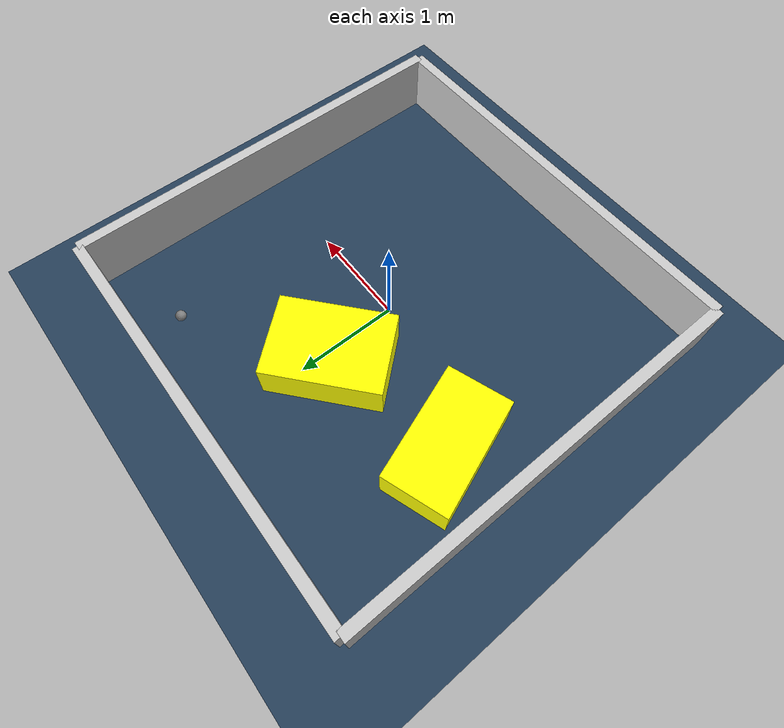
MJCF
<?xml version="1.0" ?>
<mujoco model="generated_environment">
  <option timestep="0.01" integrator="RK4" cone="elliptic"/>
  <default>
    <geom density="1"/>
  </default>
  <asset>
    <texture builtin="gradient" height="3072" rgb1="0.3 0.5 0.7" rgb2="0 0 0" type="skybox" width="512"/>
    <texture builtin="checker" height="300" mark="edge" markrgb="0.8 0.8 0.8" name="groundplane" rgb1="0.2 0.3 0.4" rgb2="0.1 0.2 0.3" type="2d" width="300"/>
    <material name="groundplane" reflectance="0.2" texrepeat="5 5" texture="groundplane" texuniform="true"/>
    <material name="robot" rgba="0.0 1.0 0.0 1"/>
  </asset>
  <worldbody>
    <light dir="0 0 -1" directional="true" pos="0 0 1.5"/>
    <geom condim="4" friction="1.0 0.005 0.001" material="groundplane" name="floor" size="0 0 0.05" type="plane"/>
    <body name="walls">
      <geom name="wall_1" condim="4" pos="-2.0 0.0 0.3" rgba="0.800000011920929 0.800000011920929 0.800000011920929 1.0" size="0.05 2.0 0.3" type="box"/>
      <geom name="wall_2" condim="4" pos="2.0 0.0 0.3" rgba="0.800000011920929 0.800000011920929 0.800000011920929 1.0" size="0.05 2.0 0.3" type="box"/>
      <geom name="wall_3" condim="4" pos="0.0 -2.0 0.3" rgba="0.800000011920929 0.800000011920929 0.800000011920929 1.0" size="2.0 0.05 0.3" type="box"/>
      <geom name="wall_4" condim="4" pos="0.0 2.0 0.3" rgba="0.800000011920929 0.800000011920929 0.800000011920929 1.0" size="2.0 0.05 0.3" type="box"/>
    </body>
    <body name="robot">
      <joint name="joint_x" type="slide" pos="0 0 0" axis="1 0 0"/>
      <joint name="joint_y" type="slide" pos="0 0 0" axis="0 1 0"/>
      <geom name="robot" type="sphere" pos="1.052036558129838 1.594185258870096 0.2" size="0.05" mass="5." friction="1.0 0.005 0.0001" condim="4"/>
      <site name="sensor_ball"/>
    </body>
    <body name="obstacle_1_movable">
      <geom name="obstacle_1_movable" condim="4" pos="-0.10485831279298563 0.7415154111836437 0.2" euler="0 0 220.77810037337966" friction="1.0 0.005 0.001" rgba="1 1 0 1" size="0.5435927960458296 0.38273897483982167 0.2" type="box" mass="0.1"/>
      <joint type="free"/>
    </body>
    <body name="obstacle_2_movable">
      <geom name="obstacle_2_movable" condim="4" pos="-1.3789421072859438 0.4877199565031507 0.2" euler="0 0 109.7534080048196" friction="1.0 0.005 0.001" rgba="1 1 0 1" size="0.5502149896820152 0.3090747071029986 0.2" type="box" mass="0.1"/>
      <joint type="free"/>
    </body>
  </worldbody>
  <actuator>
    <motor name="actuator_x" joint="joint_x" gear="1" ctrlrange="-1 1"/>
    <motor name="actuator_y" joint="joint_y" gear="1" ctrlrange="-1 1"/>
  </actuator>
</mujoco>
